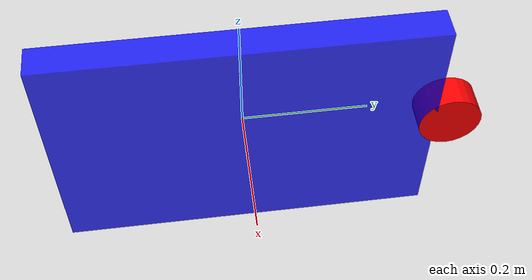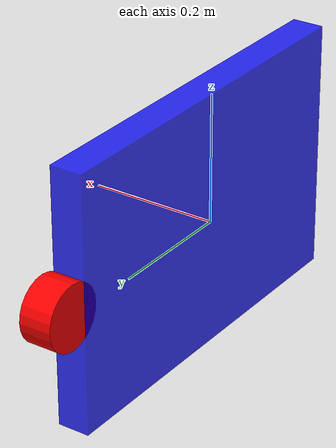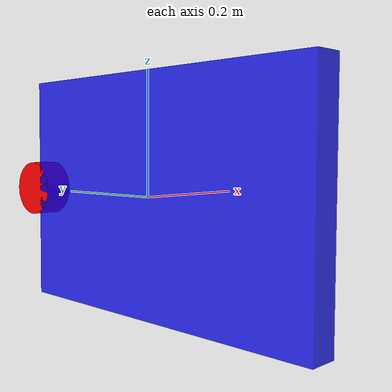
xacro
<?xml version="1.0"?>
<robot xmlns:xacro="http://www.ros.org/wiki/xacro" name="tracker">

  <xacro:include filename="properties.xacro" />
  <xacro:property name="base_length" value="0.6" />
  <xacro:property name="base_width" value="0.4" />
  <xacro:property name="base_height" value="0.05" />
  <xacro:property name="nose_length" value="0.05" />
  <xacro:property name="nose_radius" value="0.05" />

  <!-- BASE LINK -->
  <link name="world"/>

  <!-- BODY -->
  <link name="px4_uav">
    <visual>
      <geometry>
        <box size="${base_length} ${base_width} ${base_height}"/>
      </geometry>
      <material name="blue">
        <color rgba="0 0 1 0.8"/>
      </material>
      <origin xyz="0 0 ${base_height / 2.0}" rpy="0 0 0" />
    </visual>

  </link>

  <link name="nose_uav">
    <visual>
      <geometry>
        <cylinder radius="${nose_radius}" length="${nose_length}" />
      </geometry>
      <material name="red">
        <color rgba="1 0 0 1" />
      </material>
      <origin xyz="0 0 0 " rpy="0 0 0" />
    </visual>

  </link>

  <joint name="world_to_px4_uav" type="fixed">
    <parent link="world"/>
    <child  link="px4_uav"/>
    <origin xyz="0 0 0" rpy="${pi/2} 0 ${pi/2.0}"/>
  </joint>

  <joint name="px4_uav_to_nose" type="fixed">
    <parent link="px4_uav"/>
    <child link="nose_uav"/>
    <origin xyz="${base_length/2.0 + nose_length/2.0} 0 ${base_height/2.0}"
            rpy="0 0 0"/>
  </joint>

</robot>
